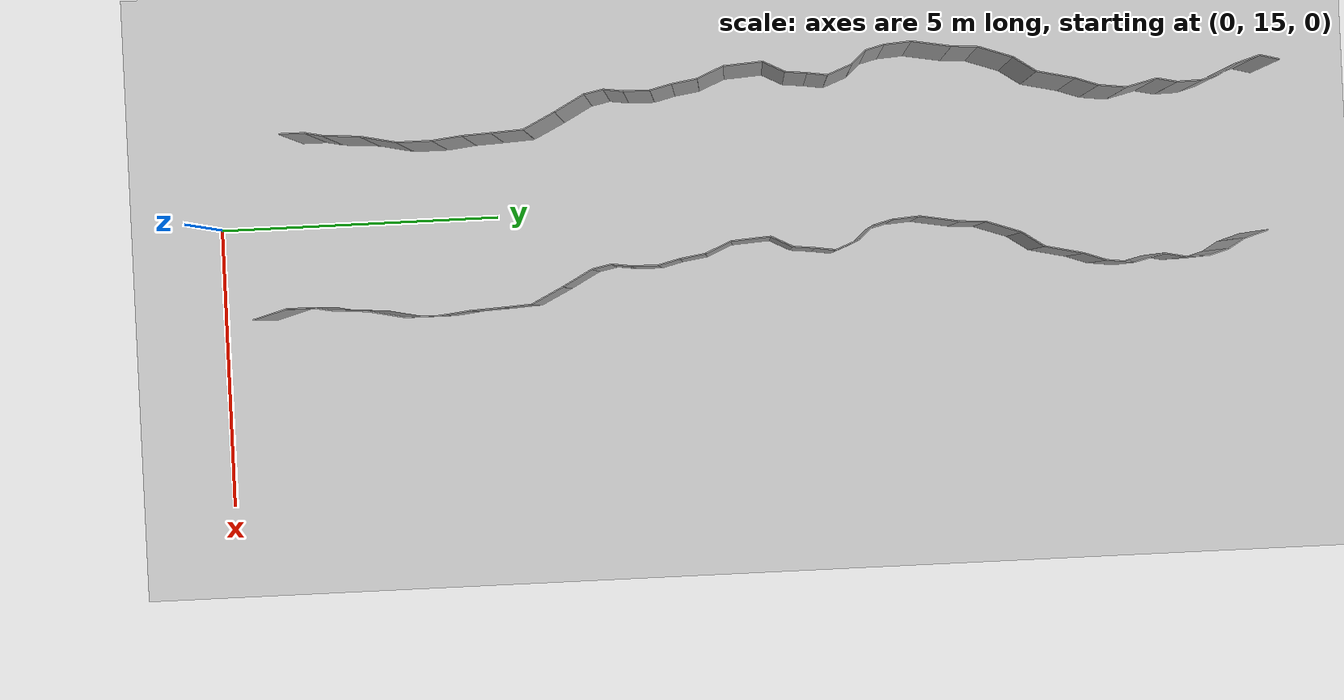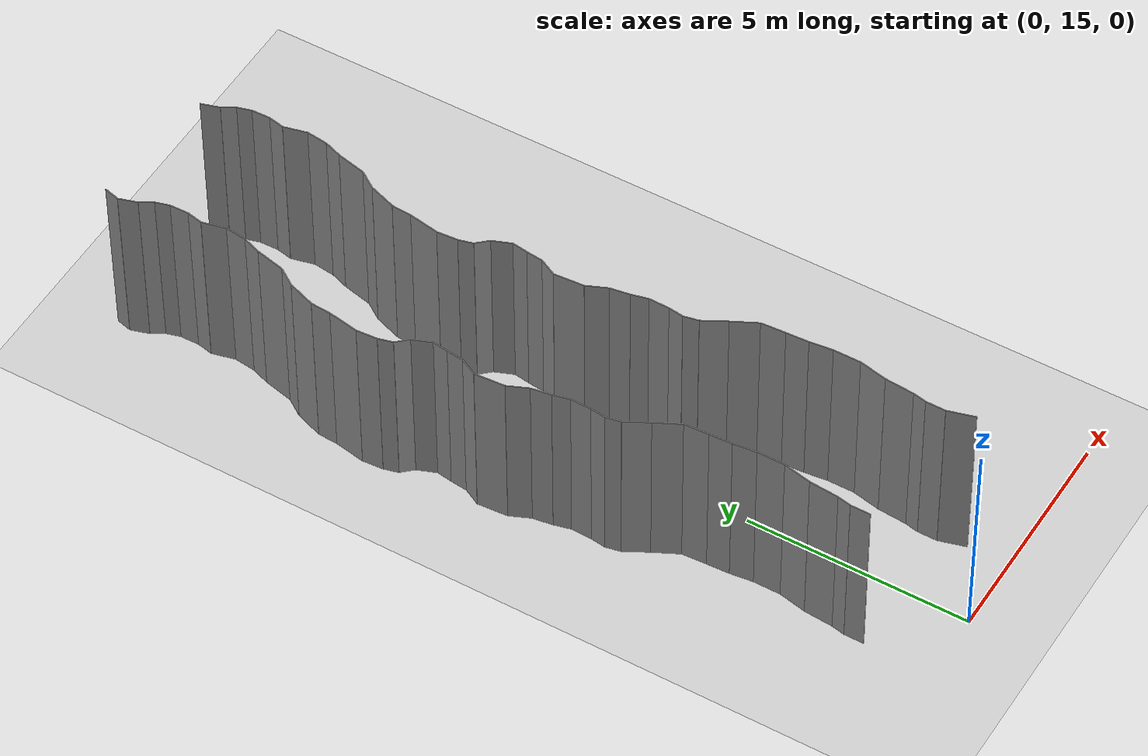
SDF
<sdf version="1.6">
 <world name="default">
  <model name="ground_plane">
   <static>1</static>
   <link name="link">
    <collision name="collision">
     <geometry><plane><normal>0 0 1</normal><size>200 200</size></plane></geometry>
     <surface><friction><ode><mu>100</mu><mu2>50</mu2></ode></friction></surface>
    </collision>
    <visual name="visual">
     <cast_shadows>0</cast_shadows>
     <geometry><plane><normal>0 0 1</normal><size>200 200</size></plane></geometry>
     <material>
      <script><uri>file://media/materials/scripts/gazebo.material</uri><name>Gazebo/Grey</name></script>
     </material>
    </visual>
   </link>
   <pose>0 100 0 0 -0 0</pose>
  </model>
  <model name="wall_73">
   <static>1</static>
   <pose>1.5717013448622166 16.238100182832095 2 0 0 0.2682797676968485</pose>
   <link name="link">
    <collision name="collision"><geometry><box><size>0.02 0.620801550412 4</size></box></geometry></collision>
    <visual name="visual">
     <material>
      <script><name>Gazebo/Grey</name><uri>file://media/materials/scripts/gazebo.material</uri></script>
     </material>
     <geometry><box><size>0.02 0.620801550412 4</size></box></geometry>
    </visual>
   </link>
  </model>
  <model name="wall_74">
   <static>1</static>
   <pose>-1.50974459134682 16.75761538846065 2 0 0 -0.0037824602446166916</pose>
   <link name="link">
    <collision name="collision"><geometry><box><size>0.02 0.440439132026 4</size></box></geometry></collision>
    <visual name="visual">
     <material>
      <script><name>Gazebo/Grey</name><uri>file://media/materials/scripts/gazebo.material</uri></script>
     </material>
     <geometry><box><size>0.02 0.440439132026 4</size></box></geometry>
    </visual>
   </link>
  </model>
  <model name="wall_75">
   <static>1</static>
   <pose>1.49025540865318 16.75761538846065 2 0 0 -0.0037824602446166916</pose>
   <link name="link">
    <collision name="collision"><geometry><box><size>0.02 0.440439132026 4</size></box></geometry></collision>
    <visual name="visual">
     <material>
      <script><name>Gazebo/Grey</name><uri>file://media/materials/scripts/gazebo.material</uri></script>
     </material>
     <geometry><box><size>0.02 0.440439132026 4</size></box></geometry>
    </visual>
   </link>
  </model>
  <model name="wall_76">
   <static>1</static>
   <pose>-1.4788715510664707 17.12615217923091 2 0 0 -0.19983395495206277</pose>
   <link name="link">
    <collision name="collision"><geometry><box><size>0.02 0.302660683265 4</size></box></geometry></collision>
    <visual name="visual">
     <material>
      <script><name>Gazebo/Grey</name><uri>file://media/materials/scripts/gazebo.material</uri></script>
     </material>
     <geometry><box><size>0.02 0.302660683265 4</size></box></geometry>
    </visual>
   </link>
  </model>
  <model name="wall_77">
   <static>1</static>
   <pose>1.5211284489335293 17.12615217923091 2 0 0 -0.19983395495206277</pose>
   <link name="link">
    <collision name="collision"><geometry><box><size>0.02 0.302660683265 4</size></box></geometry></collision>
    <visual name="visual">
     <material>
      <script><name>Gazebo/Grey</name><uri>file://media/materials/scripts/gazebo.material</uri></script>
     </material>
     <geometry><box><size>0.02 0.302660683265 4</size></box></geometry>
    </visual>
   </link>
  </model>
  <model name="wall_78">
   <static>1</static>
   <pose>-1.4244664659801647 17.600824211612792 2 0 0 -0.07452016327790473</pose>
   <link name="link">
    <collision name="collision"><geometry><box><size>0.02 0.654522990148 4</size></box></geometry></collision>
    <visual name="visual">
     <material>
      <script><name>Gazebo/Grey</name><uri>file://media/materials/scripts/gazebo.material</uri></script>
     </material>
     <geometry><box><size>0.02 0.654522990148 4</size></box></geometry>
    </visual>
   </link>
  </model>
  <model name="wall_79">
   <static>1</static>
   <pose>1.5755335340198353 17.600824211612792 2 0 0 -0.07452016327790473</pose>
   <link name="link">
    <collision name="collision"><geometry><box><size>0.02 0.654522990148 4</size></box></geometry></collision>
    <visual name="visual">
     <material>
      <script><name>Gazebo/Grey</name><uri>file://media/materials/scripts/gazebo.material</uri></script>
     </material>
     <geometry><box><size>0.02 0.654522990148 4</size></box></geometry>
    </visual>
   </link>
  </model>
  <model name="wall_80">
   <static>1</static>
   <pose>-1.3352252308877155 18.236211478110285 2 0 0 -0.20692733711803735</pose>
   <link name="link">
    <collision name="collision"><geometry><box><size>0.02 0.631540840454 4</size></box></geometry></collision>
    <visual name="visual">
     <material>
      <script><name>Gazebo/Grey</name><uri>file://media/materials/scripts/gazebo.material</uri></script>
     </material>
     <geometry><box><size>0.02 0.631540840454 4</size></box></geometry>
    </visual>
   </link>
  </model>
  <model name="wall_81">
   <static>1</static>
   <pose>1.6647747691122845 18.236211478110285 2 0 0 -0.20692733711803735</pose>
   <link name="link">
    <collision name="collision"><geometry><box><size>0.02 0.631540840454 4</size></box></geometry></collision>
    <visual name="visual">
     <material>
      <script><name>Gazebo/Grey</name><uri>file://media/materials/scripts/gazebo.material</uri></script>
     </material>
     <geometry><box><size>0.02 0.631540840454 4</size></box></geometry>
    </visual>
   </link>
  </model>
  <model name="wall_82">
   <static>1</static>
   <pose>-1.2701465992344358 18.85010995103074 2 0 0 -0.0006639380611708689</pose>
   <link name="link">
    <collision name="collision"><geometry><box><size>0.02 0.609729011805 4</size></box></geometry></collision>
    <visual name="visual">
     <material>
      <script><name>Gazebo/Grey</name><uri>file://media/materials/scripts/gazebo.material</uri></script>
     </material>
     <geometry><box><size>0.02 0.609729011805 4</size></box></geometry>
    </visual>
   </link>
  </model>
  <model name="wall_83">
   <static>1</static>
   <pose>1.7298534007655642 18.85010995103074 2 0 0 -0.0006639380611708689</pose>
   <link name="link">
    <collision name="collision"><geometry><box><size>0.02 0.609729011805 4</size></box></geometry></collision>
    <visual name="visual">
     <material>
      <script><name>Gazebo/Grey</name><uri>file://media/materials/scripts/gazebo.material</uri></script>
     </material>
     <geometry><box><size>0.02 0.609729011805 4</size></box></geometry>
    </visual>
   </link>
  </model>
  <model name="wall_84">
   <static>1</static>
   <pose>-1.299373359090749 19.41177049488187 2 0 0 0.11410352644146506</pose>
   <link name="link">
    <collision name="collision"><geometry><box><size>0.02 0.516953830518 4</size></box></geometry></collision>
    <visual name="visual">
     <material>
      <script><name>Gazebo/Grey</name><uri>file://media/materials/scripts/gazebo.material</uri></script>
     </material>
     <geometry><box><size>0.02 0.516953830518 4</size></box></geometry>
    </visual>
   </link>
  </model>
  <model name="wall_85">
   <static>1</static>
   <pose>1.700626640909251 19.41177049488187 2 0 0 0.11410352644146506</pose>
   <link name="link">
    <collision name="collision"><geometry><box><size>0.02 0.516953830518 4</size></box></geometry></collision>
    <visual name="visual">
     <material>
      <script><name>Gazebo/Grey</name><uri>file://media/materials/scripts/gazebo.material</uri></script>
     </material>
     <geometry><box><size>0.02 0.516953830518 4</size></box></geometry>
    </visual>
   </link>
  </model>
  <model name="wall_86">
   <static>1</static>
   <pose>-1.3411813555637073 19.92039152996001 2 0 0 0.04911693752746528</pose>
   <link name="link">
    <collision name="collision"><geometry><box><size>0.02 0.504257992132 4</size></box></geometry></collision>
    <visual name="visual">
     <material>
      <script><name>Gazebo/Grey</name><uri>file://media/materials/scripts/gazebo.material</uri></script>
     </material>
     <geometry><box><size>0.02 0.504257992132 4</size></box></geometry>
    </visual>
   </link>
  </model>
  <model name="wall_87">
   <static>1</static>
   <pose>1.6588186444362927 19.92039152996001 2 0 0 0.04911693752746528</pose>
   <link name="link">
    <collision name="collision"><geometry><box><size>0.02 0.504257992132 4</size></box></geometry></collision>
    <visual name="visual">
     <material>
      <script><name>Gazebo/Grey</name><uri>file://media/materials/scripts/gazebo.material</uri></script>
     </material>
     <geometry><box><size>0.02 0.504257992132 4</size></box></geometry>
    </visual>
   </link>
  </model>
  <model name="wall_88">
   <static>1</static>
   <pose>-1.3693698605942195 20.44796934330465 2 0 0 0.05727008561438874</pose>
   <link name="link">
    <collision name="collision"><geometry><box><size>0.02 0.552411436073 4</size></box></geometry></collision>
    <visual name="visual">
     <material>
      <script><name>Gazebo/Grey</name><uri>file://media/materials/scripts/gazebo.material</uri></script>
     </material>
     <geometry><box><size>0.02 0.552411436073 4</size></box></geometry>
    </visual>
   </link>
  </model>
  <model name="wall_89">
   <static>1</static>
   <pose>1.6306301394057805 20.44796934330465 2 0 0 0.05727008561438874</pose>
   <link name="link">
    <collision name="collision"><geometry><box><size>0.02 0.552411436073 4</size></box></geometry></collision>
    <visual name="visual">
     <material>
      <script><name>Gazebo/Grey</name><uri>file://media/materials/scripts/gazebo.material</uri></script>
     </material>
     <geometry><box><size>0.02 0.552411436073 4</size></box></geometry>
    </visual>
   </link>
  </model>
  <model name="wall_90">
   <static>1</static>
   <pose>-1.5231800420298953 20.999573042570326 2 0 0 0.46386536665233824</pose>
   <link name="link">
    <collision name="collision"><geometry><box><size>0.02 0.616888356608 4</size></box></geometry></collision>
    <visual name="visual">
     <material>
      <script><name>Gazebo/Grey</name><uri>file://media/materials/scripts/gazebo.material</uri></script>
     </material>
     <geometry><box><size>0.02 0.616888356608 4</size></box></geometry>
    </visual>
   </link>
  </model>
  <model name="wall_91">
   <static>1</static>
   <pose>1.4768199579701047 20.999573042570326 2 0 0 0.46386536665233824</pose>
   <link name="link">
    <collision name="collision"><geometry><box><size>0.02 0.616888356608 4</size></box></geometry></collision>
    <visual name="visual">
     <material>
      <script><name>Gazebo/Grey</name><uri>file://media/materials/scripts/gazebo.material</uri></script>
     </material>
     <geometry><box><size>0.02 0.616888356608 4</size></box></geometry>
    </visual>
   </link>
  </model>
  <model name="wall_92">
   <static>1</static>
   <pose>-1.8007864723309284 21.532290220596444 2 0 0 0.49783629137514196</pose>
   <link name="link">
    <collision name="collision"><geometry><box><size>0.02 0.584705543885 4</size></box></geometry></collision>
    <visual name="visual">
     <material>
      <script><name>Gazebo/Grey</name><uri>file://media/materials/scripts/gazebo.material</uri></script>
     </material>
     <geometry><box><size>0.02 0.584705543885 4</size></box></geometry>
    </visual>
   </link>
  </model>
  <model name="wall_93">
   <static>1</static>
   <pose>1.1992135276690716 21.532290220596444 2 0 0 0.49783629137514196</pose>
   <link name="link">
    <collision name="collision"><geometry><box><size>0.02 0.584705543885 4</size></box></geometry></collision>
    <visual name="visual">
     <material>
      <script><name>Gazebo/Grey</name><uri>file://media/materials/scripts/gazebo.material</uri></script>
     </material>
     <geometry><box><size>0.02 0.584705543885 4</size></box></geometry>
    </visual>
   </link>
  </model>
  <model name="wall_94">
   <static>1</static>
   <pose>-1.9741265558823107 21.956182674335075 2 0 0 0.19928846943864703</pose>
   <link name="link">
    <collision name="collision"><geometry><box><size>0.02 0.340797350269 4</size></box></geometry></collision>
    <visual name="visual">
     <material>
      <script><name>Gazebo/Grey</name><uri>file://media/materials/scripts/gazebo.material</uri></script>
     </material>
     <geometry><box><size>0.02 0.340797350269 4</size></box></geometry>
    </visual>
   </link>
  </model>
  <model name="wall_95">
   <static>1</static>
   <pose>1.0258734441176893 21.956182674335075 2 0 0 0.19928846943864703</pose>
   <link name="link">
    <collision name="collision"><geometry><box><size>0.02 0.340797350269 4</size></box></geometry></collision>
    <visual name="visual">
     <material>
      <script><name>Gazebo/Grey</name><uri>file://media/materials/scripts/gazebo.material</uri></script>
     </material>
     <geometry><box><size>0.02 0.340797350269 4</size></box></geometry>
    </visual>
   </link>
  </model>
  <model name="wall_96">
   <static>1</static>
   <pose>-1.9852331832228716 22.29065924674199 2 0 0 -0.13431607236533805</pose>
   <link name="link">
    <collision name="collision"><geometry><box><size>0.02 0.337944779792 4</size></box></geometry></collision>
    <visual name="visual">
     <material>
      <script><name>Gazebo/Grey</name><uri>file://media/materials/scripts/gazebo.material</uri></script>
     </material>
     <geometry><box><size>0.02 0.337944779792 4</size></box></geometry>
    </visual>
   </link>
  </model>
  <model name="wall_97">
   <static>1</static>
   <pose>1.0147668167771284 22.29065924674199 2 0 0 -0.13431607236533805</pose>
   <link name="link">
    <collision name="collision"><geometry><box><size>0.02 0.337944779792 4</size></box></geometry></collision>
    <visual name="visual">
     <material>
      <script><name>Gazebo/Grey</name><uri>file://media/materials/scripts/gazebo.material</uri></script>
     </material>
     <geometry><box><size>0.02 0.337944779792 4</size></box></geometry>
    </visual>
   </link>
  </model>
  <model name="wall_98">
   <static>1</static>
   <pose>-1.957455391450274 22.690313694674614 2 0 0 -0.022176277751504197</pose>
   <link name="link">
    <collision name="collision"><geometry><box><size>0.02 0.464522152554 4</size></box></geometry></collision>
    <visual name="visual">
     <material>
      <script><name>Gazebo/Grey</name><uri>file://media/materials/scripts/gazebo.material</uri></script>
     </material>
     <geometry><box><size>0.02 0.464522152554 4</size></box></geometry>
    </visual>
   </link>
  </model>
  <model name="wall_99">
   <static>1</static>
   <pose>1.042544608549726 22.690313694674614 2 0 0 -0.022176277751504197</pose>
   <link name="link">
    <collision name="collision"><geometry><box><size>0.02 0.464522152554 4</size></box></geometry></collision>
    <visual name="visual">
     <material>
      <script><name>Gazebo/Grey</name><uri>file://media/materials/scripts/gazebo.material</uri></script>
     </material>
     <geometry><box><size>0.02 0.464522152554 4</size></box></geometry>
    </visual>
   </link>
  </model>
  <model name="wall_100">
   <static>1</static>
   <pose>-1.9981191306679005 23.109032375694895 2 0 0 0.24086350407893845</pose>
   <link name="link">
    <collision name="collision"><geometry><box><size>0.02 0.384118009989 4</size></box></geometry></collision>
    <visual name="visual">
     <material>
      <script><name>Gazebo/Grey</name><uri>file://media/materials/scripts/gazebo.material</uri></script>
     </material>
     <geometry><box><size>0.02 0.384118009989 4</size></box></geometry>
    </visual>
   </link>
  </model>
  <model name="wall_101">
   <static>1</static>
   <pose>1.0018808693320995 23.109032375694895 2 0 0 0.24086350407893845</pose>
   <link name="link">
    <collision name="collision"><geometry><box><size>0.02 0.384118009989 4</size></box></geometry></collision>
    <visual name="visual">
     <material>
      <script><name>Gazebo/Grey</name><uri>file://media/materials/scripts/gazebo.material</uri></script>
     </material>
     <geometry><box><size>0.02 0.384118009989 4</size></box></geometry>
    </visual>
   </link>
  </model>
  <model name="wall_102">
   <static>1</static>
   <pose>-2.0779140029207506 23.517107589674563 2 0 0 0.15218474667878146</pose>
   <link name="link">
    <collision name="collision"><geometry><box><size>0.02 0.448302374056 4</size></box></geometry></collision>
    <visual name="visual">
     <material>
      <script><name>Gazebo/Grey</name><uri>file://media/materials/scripts/gazebo.material</uri></script>
     </material>
     <geometry><box><size>0.02 0.448302374056 4</size></box></geometry>
    </visual>
   </link>
  </model>
  <model name="wall_103">
   <static>1</static>
   <pose>0.9220859970792494 23.517107589674563 2 0 0 0.15218474667878146</pose>
   <link name="link">
    <collision name="collision"><geometry><box><size>0.02 0.448302374056 4</size></box></geometry></collision>
    <visual name="visual">
     <material>
      <script><name>Gazebo/Grey</name><uri>file://media/materials/scripts/gazebo.material</uri></script>
     </material>
     <geometry><box><size>0.02 0.448302374056 4</size></box></geometry>
    </visual>
   </link>
  </model>
  <model name="wall_104">
   <static>1</static>
   <pose>-2.2093518582087603 23.965898470175 2 0 0 0.4051614446278775</pose>
   <link name="link">
    <collision name="collision"><geometry><box><size>0.02 0.494495743005 4</size></box></geometry></collision>
    <visual name="visual">
     <material>
      <script><name>Gazebo/Grey</name><uri>file://media/materials/scripts/gazebo.material</uri></script>
     </material>
     <geometry><box><size>0.02 0.494495743005 4</size></box></geometry>
    </visual>
   </link>
  </model>
  <model name="wall_105">
   <static>1</static>
   <pose>0.7906481417912397 23.965898470175 2 0 0 0.4051614446278775</pose>
   <link name="link">
    <collision name="collision"><geometry><box><size>0.02 0.494495743005 4</size></box></geometry></collision>
    <visual name="visual">
     <material>
      <script><name>Gazebo/Grey</name><uri>file://media/materials/scripts/gazebo.material</uri></script>
     </material>
     <geometry><box><size>0.02 0.494495743005 4</size></box></geometry>
    </visual>
   </link>
  </model>
  <model name="wall_106">
   <static>1</static>
   <pose>-2.3298995162277705 24.53259080262013 2 0 0 0.06791676471023138</pose>
   <link name="link">
    <collision name="collision"><geometry><box><size>0.02 0.680492750816 4</size></box></geometry></collision>
    <visual name="visual">
     <material>
      <script><name>Gazebo/Grey</name><uri>file://media/materials/scripts/gazebo.material</uri></script>
     </material>
     <geometry><box><size>0.02 0.680492750816 4</size></box></geometry>
    </visual>
   </link>
  </model>
  <model name="wall_107">
   <static>1</static>
   <pose>0.6701004837722295 24.53259080262013 2 0 0 0.06791676471023138</pose>
   <link name="link">
    <collision name="collision"><geometry><box><size>0.02 0.680492750816 4</size></box></geometry></collision>
    <visual name="visual">
     <material>
      <script><name>Gazebo/Grey</name><uri>file://media/materials/scripts/gazebo.material</uri></script>
     </material>
     <geometry><box><size>0.02 0.680492750816 4</size></box></geometry>
    </visual>
   </link>
  </model>
  <model name="wall_108">
   <static>1</static>
   <pose>-2.2571940620833413 25.058265987990737 2 0 0 -0.4751352688544091</pose>
   <link name="link">
    <collision name="collision"><geometry><box><size>0.02 0.418818653009 4</size></box></geometry></collision>
    <visual name="visual">
     <material>
      <script><name>Gazebo/Grey</name><uri>file://media/materials/scripts/gazebo.material</uri></script>
     </material>
     <geometry><box><size>0.02 0.418818653009 4</size></box></geometry>
    </visual>
   </link>
  </model>
  <model name="wall_109">
   <static>1</static>
   <pose>0.7428059379166587 25.058265987990737 2 0 0 -0.4751352688544091</pose>
   <link name="link">
    <collision name="collision"><geometry><box><size>0.02 0.418818653009 4</size></box></geometry></collision>
    <visual name="visual">
     <material>
      <script><name>Gazebo/Grey</name><uri>file://media/materials/scripts/gazebo.material</uri></script>
     </material>
     <geometry><box><size>0.02 0.418818653009 4</size></box></geometry>
    </visual>
   </link>
  </model>
  <model name="wall_110">
   <static>1</static>
   <pose>-2.1412712356360597 25.433382794964054 2 0 0 -0.10614440251509129</pose>
   <link name="link">
    <collision name="collision"><geometry><box><size>0.02 0.379945491842 4</size></box></geometry></collision>
    <visual name="visual">
     <material>
      <script><name>Gazebo/Grey</name><uri>file://media/materials/scripts/gazebo.material</uri></script>
     </material>
     <geometry><box><size>0.02 0.379945491842 4</size></box></geometry>
    </visual>
   </link>
  </model>
  <model name="wall_111">
   <static>1</static>
   <pose>0.8587287643639403 25.433382794964054 2 0 0 -0.10614440251509129</pose>
   <link name="link">
    <collision name="collision"><geometry><box><size>0.02 0.379945491842 4</size></box></geometry></collision>
    <visual name="visual">
     <material>
      <script><name>Gazebo/Grey</name><uri>file://media/materials/scripts/gazebo.material</uri></script>
     </material>
     <geometry><box><size>0.02 0.379945491842 4</size></box></geometry>
    </visual>
   </link>
  </model>
  <model name="wall_112">
   <static>1</static>
   <pose>-2.0954033985259763 25.797578480225994 2 0 0 -0.14580500051363662</pose>
   <link name="link">
    <collision name="collision"><geometry><box><size>0.02 0.354344073036 4</size></box></geometry></collision>
    <visual name="visual">
     <material>
      <script><name>Gazebo/Grey</name><uri>file://media/materials/scripts/gazebo.material</uri></script>
     </material>
     <geometry><box><size>0.02 0.354344073036 4</size></box></geometry>
    </visual>
   </link>
  </model>
  <model name="wall_113">
   <static>1</static>
   <pose>0.9045966014740237 25.797578480225994 2 0 0 -0.14580500051363662</pose>
   <link name="link">
    <collision name="collision"><geometry><box><size>0.02 0.354344073036 4</size></box></geometry></collision>
    <visual name="visual">
     <material>
      <script><name>Gazebo/Grey</name><uri>file://media/materials/scripts/gazebo.material</uri></script>
     </material>
     <geometry><box><size>0.02 0.354344073036 4</size></box></geometry>
    </visual>
   </link>
  </model>
  <model name="wall_114">
   <static>1</static>
   <pose>-2.15126952615618 26.183673261530842 2 0 0 0.3693593631551004</pose>
   <link name="link">
    <collision name="collision"><geometry><box><size>0.02 0.452095171856 4</size></box></geometry></collision>
    <visual name="visual">
     <material>
      <script><name>Gazebo/Grey</name><uri>file://media/materials/scripts/gazebo.material</uri></script>
     </material>
     <geometry><box><size>0.02 0.452095171856 4</size></box></geometry>
    </visual>
   </link>
  </model>
  <model name="wall_115">
   <static>1</static>
   <pose>0.8487304738438199 26.183673261530842 2 0 0 0.3693593631551004</pose>
   <link name="link">
    <collision name="collision"><geometry><box><size>0.02 0.452095171856 4</size></box></geometry></collision>
    <visual name="visual">
     <material>
      <script><name>Gazebo/Grey</name><uri>file://media/materials/scripts/gazebo.material</uri></script>
     </material>
     <geometry><box><size>0.02 0.452095171856 4</size></box></geometry>
    </visual>
   </link>
  </model>
  <model name="wall_116">
   <static>1</static>
   <pose>-2.347660921753066 26.519426930049164 2 0 0 0.7430148088183338</pose>
   <link name="link">
    <collision name="collision"><geometry><box><size>0.02 0.339341414706 4</size></box></geometry></collision>
    <visual name="visual">
     <material>
      <script><name>Gazebo/Grey</name><uri>file://media/materials/scripts/gazebo.material</uri></script>
     </material>
     <geometry><box><size>0.02 0.339341414706 4</size></box></geometry>
    </visual>
   </link>
  </model>
  <model name="wall_117">
   <static>1</static>
   <pose>0.6523390782469338 26.519426930049164 2 0 0 0.7430148088183338</pose>
   <link name="link">
    <collision name="collision"><geometry><box><size>0.02 0.339341414706 4</size></box></geometry></collision>
    <visual name="visual">
     <material>
      <script><name>Gazebo/Grey</name><uri>file://media/materials/scripts/gazebo.material</uri></script>
     </material>
     <geometry><box><size>0.02 0.339341414706 4</size></box></geometry>
    </visual>
   </link>
  </model>
  <model name="wall_118">
   <static>1</static>
   <pose>-2.5033234400872235 26.80558627225861 2 0 0 0.24834041944707833</pose>
   <link name="link">
    <collision name="collision"><geometry><box><size>0.02 0.332620940302 4</size></box></geometry></collision>
    <visual name="visual">
     <material>
      <script><name>Gazebo/Grey</name><uri>file://media/materials/scripts/gazebo.material</uri></script>
     </material>
     <geometry><box><size>0.02 0.332620940302 4</size></box></geometry>
    </visual>
   </link>
  </model>
  <model name="wall_119">
   <static>1</static>
   <pose>0.4966765599127765 26.80558627225861 2 0 0 0.24834041944707833</pose>
   <link name="link">
    <collision name="collision"><geometry><box><size>0.02 0.332620940302 4</size></box></geometry></collision>
    <visual name="visual">
     <material>
      <script><name>Gazebo/Grey</name><uri>file://media/materials/scripts/gazebo.material</uri></script>
     </material>
     <geometry><box><size>0.02 0.332620940302 4</size></box></geometry>
    </visual>
   </link>
  </model>
  <model name="wall_120">
   <static>1</static>
   <pose>-2.5610477131316465 27.200331072512704 2 0 0 0.07200913788596815</pose>
   <link name="link">
    <collision name="collision"><geometry><box><size>0.02 0.468286496017 4</size></box></geometry></collision>
    <visual name="visual">
     <material>
      <script><name>Gazebo/Grey</name><uri>file://media/materials/scripts/gazebo.material</uri></script>
     </material>
     <geometry><box><size>0.02 0.468286496017 4</size></box></geometry>
    </visual>
   </link>
  </model>
  <model name="wall_121">
   <static>1</static>
   <pose>0.4389522868683535 27.200331072512704 2 0 0 0.07200913788596815</pose>
   <link name="link">
    <collision name="collision"><geometry><box><size>0.02 0.468286496017 4</size></box></geometry></collision>
    <visual name="visual">
     <material>
      <script><name>Gazebo/Grey</name><uri>file://media/materials/scripts/gazebo.material</uri></script>
     </material>
     <geometry><box><size>0.02 0.468286496017 4</size></box></geometry>
    </visual>
   </link>
  </model>
  <model name="wall_122">
   <static>1</static>
   <pose>-2.5186295732245196 27.77410115619002 2 0 0 -0.17245600637142564</pose>
   <link name="link">
    <collision name="collision"><geometry><box><size>0.02 0.690713096888 4</size></box></geometry></collision>
    <visual name="visual">
     <material>
      <script><name>Gazebo/Grey</name><uri>file://media/materials/scripts/gazebo.material</uri></script>
     </material>
     <geometry><box><size>0.02 0.690713096888 4</size></box></geometry>
    </visual>
   </link>
  </model>
  <model name="wall_123">
   <static>1</static>
   <pose>0.48137042677548036 27.77410115619002 2 0 0 -0.17245600637142564</pose>
   <link name="link">
    <collision name="collision"><geometry><box><size>0.02 0.690713096888 4</size></box></geometry></collision>
    <visual name="visual">
     <material>
      <script><name>Gazebo/Grey</name><uri>file://media/materials/scripts/gazebo.material</uri></script>
     </material>
     <geometry><box><size>0.02 0.690713096888 4</size></box></geometry>
    </visual>
   </link>
  </model>
  <model name="wall_124">
   <static>1</static>
   <pose>-2.4458604175021397 28.33828294426696 2 0 0 -0.06023177017842287</pose>
   <link name="link">
    <collision name="collision"><geometry><box><size>0.02 0.448710006517 4</size></box></geometry></collision>
    <visual name="visual">
     <material>
      <script><name>Gazebo/Grey</name><uri>file://media/materials/scripts/gazebo.material</uri></script>
     </material>
     <geometry><box><size>0.02 0.448710006517 4</size></box></geometry>
    </visual>
   </link>
  </model>
  <model name="wall_125">
   <static>1</static>
   <pose>0.5541395824978603 28.33828294426696 2 0 0 -0.06023177017842287</pose>
   <link name="link">
    <collision name="collision"><geometry><box><size>0.02 0.448710006517 4</size></box></geometry></collision>
    <visual name="visual">
     <material>
      <script><name>Gazebo/Grey</name><uri>file://media/materials/scripts/gazebo.material</uri></script>
     </material>
     <geometry><box><size>0.02 0.448710006517 4</size></box></geometry>
    </visual>
   </link>
  </model>
  <model name="wall_126">
   <static>1</static>
   <pose>-2.3284115643125376 28.861993465372215 2 0 0 -0.33377991831879267</pose>
   <link name="link">
    <collision name="collision"><geometry><box><size>0.02 0.634544781683 4</size></box></geometry></collision>
    <visual name="visual">
     <material>
      <script><name>Gazebo/Grey</name><uri>file://media/materials/scripts/gazebo.material</uri></script>
     </material>
     <geometry><box><size>0.02 0.634544781683 4</size></box></geometry>
    </visual>
   </link>
  </model>
  <model name="wall_127">
   <static>1</static>
   <pose>0.6715884356874624 28.861993465372215 2 0 0 -0.33377991831879267</pose>
   <link name="link">
    <collision name="collision"><geometry><box><size>0.02 0.634544781683 4</size></box></geometry></collision>
    <visual name="visual">
     <material>
      <script><name>Gazebo/Grey</name><uri>file://media/materials/scripts/gazebo.material</uri></script>
     </material>
     <geometry><box><size>0.02 0.634544781683 4</size></box></geometry>
    </visual>
   </link>
  </model>
  <model name="wall_128">
   <static>1</static>
   <pose>-2.0929666959523736 29.355148747225623 2 0 0 -0.5971552938586568</pose>
   <link name="link">
    <collision name="collision"><geometry><box><size>0.02 0.467732288462 4</size></box></geometry></collision>
    <visual name="visual">
     <material>
      <script><name>Gazebo/Grey</name><uri>file://media/materials/scripts/gazebo.material</uri></script>
     </material>
     <geometry><box><size>0.02 0.467732288462 4</size></box></geometry>
    </visual>
   </link>
  </model>
  <model name="wall_129">
   <static>1</static>
   <pose>0.9070333040476264 29.355148747225623 2 0 0 -0.5971552938586568</pose>
   <link name="link">
    <collision name="collision"><geometry><box><size>0.02 0.467732288462 4</size></box></geometry></collision>
    <visual name="visual">
     <material>
      <script><name>Gazebo/Grey</name><uri>file://media/materials/scripts/gazebo.material</uri></script>
     </material>
     <geometry><box><size>0.02 0.467732288462 4</size></box></geometry>
    </visual>
   </link>
  </model>
  <model name="wall_130">
   <static>1</static>
   <pose>-1.887625406823854 29.87661531333297 2 0 0 -0.22138283560263158</pose>
   <link name="link">
    <collision name="collision"><geometry><box><size>0.02 0.672561321554 4</size></box></geometry></collision>
    <visual name="visual">
     <material>
      <script><name>Gazebo/Grey</name><uri>file://media/materials/scripts/gazebo.material</uri></script>
     </material>
     <geometry><box><size>0.02 0.672561321554 4</size></box></geometry>
    </visual>
   </link>
  </model>
  <model name="wall_131">
   <static>1</static>
   <pose>1.112374593176146 29.87661531333297 2 0 0 -0.22138283560263158</pose>
   <link name="link">
    <collision name="collision"><geometry><box><size>0.02 0.672561321554 4</size></box></geometry></collision>
    <visual name="visual">
     <material>
      <script><name>Gazebo/Grey</name><uri>file://media/materials/scripts/gazebo.material</uri></script>
     </material>
     <geometry><box><size>0.02 0.672561321554 4</size></box></geometry>
    </visual>
   </link>
  </model>
  <model name="wall_132">
   <static>1</static>
   <pose>-1.7448991974694894 30.40071087103362 2 0 0 -0.3379394931168675</pose>
   <link name="link">
    <collision name="collision"><geometry><box><size>0.02 0.41554725654 4</size></box></geometry></collision>
    <visual name="visual">
     <material>
      <script><name>Gazebo/Grey</name><uri>file://media/materials/scripts/gazebo.material</uri></script>
     </material>
     <geometry><box><size>0.02 0.41554725654 4</size></box></geometry>
    </visual>
   </link>
  </model>
  <model name="wall_133">
   <static>1</static>
   <pose>1.2551008025305106 30.40071087103362 2 0 0 -0.3379394931168675</pose>
   <link name="link">
    <collision name="collision"><geometry><box><size>0.02 0.41554725654 4</size></box></geometry></collision>
    <visual name="visual">
     <material>
      <script><name>Gazebo/Grey</name><uri>file://media/materials/scripts/gazebo.material</uri></script>
     </material>
     <geometry><box><size>0.02 0.41554725654 4</size></box></geometry>
    </visual>
   </link>
  </model>
  <model name="wall_134">
   <static>1</static>
   <pose>-1.6463858202921573 30.83747866851004 2 0 0 -0.12244898429132471</pose>
   <link name="link">
    <collision name="collision"><geometry><box><size>0.02 0.485124141611 4</size></box></geometry></collision>
    <visual name="visual">
     <material>
      <script><name>Gazebo/Grey</name><uri>file://media/materials/scripts/gazebo.material</uri></script>
     </material>
     <geometry><box><size>0.02 0.485124141611 4</size></box></geometry>
    </visual>
   </link>
  </model>
  <model name="wall_135">
   <static>1</static>
   <pose>1.3536141797078427 30.83747866851004 2 0 0 -0.12244898429132471</pose>
   <link name="link">
    <collision name="collision"><geometry><box><size>0.02 0.485124141611 4</size></box></geometry></collision>
    <visual name="visual">
     <material>
      <script><name>Gazebo/Grey</name><uri>file://media/materials/scripts/gazebo.material</uri></script>
     </material>
     <geometry><box><size>0.02 0.485124141611 4</size></box></geometry>
    </visual>
   </link>
  </model>
  <model name="wall_136">
   <static>1</static>
   <pose>-1.6794150823057896 31.3387916316887 2 0 0 0.2359821105014425</pose>
   <link name="link">
    <collision name="collision"><geometry><box><size>0.02 0.535988989141 4</size></box></geometry></collision>
    <visual name="visual">
     <material>
      <script><name>Gazebo/Grey</name><uri>file://media/materials/scripts/gazebo.material</uri></script>
     </material>
     <geometry><box><size>0.02 0.535988989141 4</size></box></geometry>
    </visual>
   </link>
  </model>
  <model name="wall_137">
   <static>1</static>
   <pose>1.3205849176942104 31.3387916316887 2 0 0 0.2359821105014425</pose>
   <link name="link">
    <collision name="collision"><geometry><box><size>0.02 0.535988989141 4</size></box></geometry></collision>
    <visual name="visual">
     <material>
      <script><name>Gazebo/Grey</name><uri>file://media/materials/scripts/gazebo.material</uri></script>
     </material>
     <geometry><box><size>0.02 0.535988989141 4</size></box></geometry>
    </visual>
   </link>
  </model>
  <model name="wall_138">
   <static>1</static>
   <pose>-1.7048402734673467 31.775662038976645 2 0 0 -0.20812016391362742</pose>
   <link name="link">
    <collision name="collision"><geometry><box><size>0.02 0.360383347618 4</size></box></geometry></collision>
    <visual name="visual">
     <material>
      <script><name>Gazebo/Grey</name><uri>file://media/materials/scripts/gazebo.material</uri></script>
     </material>
     <geometry><box><size>0.02 0.360383347618 4</size></box></geometry>
    </visual>
   </link>
  </model>
  <model name="wall_139">
   <static>1</static>
   <pose>1.2951597265326533 31.775662038976645 2 0 0 -0.20812016391362742</pose>
   <link name="link">
    <collision name="collision"><geometry><box><size>0.02 0.360383347618 4</size></box></geometry></collision>
    <visual name="visual">
     <material>
      <script><name>Gazebo/Grey</name><uri>file://media/materials/scripts/gazebo.material</uri></script>
     </material>
     <geometry><box><size>0.02 0.360383347618 4</size></box></geometry>
    </visual>
   </link>
  </model>
  <model name="wall_140">
   <static>1</static>
   <pose>-1.6722326557583902 32.16338706056617 2 0 0 0.021866385373785227</pose>
   <link name="link">
    <collision name="collision"><geometry><box><size>0.02 0.422944496388 4</size></box></geometry></collision>
    <visual name="visual">
     <material>
      <script><name>Gazebo/Grey</name><uri>file://media/materials/scripts/gazebo.material</uri></script>
     </material>
     <geometry><box><size>0.02 0.422944496388 4</size></box></geometry>
    </visual>
   </link>
  </model>
  <model name="wall_141">
   <static>1</static>
   <pose>1.3277673442416098 32.16338706056617 2 0 0 0.021866385373785227</pose>
   <link name="link">
    <collision name="collision"><geometry><box><size>0.02 0.422944496388 4</size></box></geometry></collision>
    <visual name="visual">
     <material>
      <script><name>Gazebo/Grey</name><uri>file://media/materials/scripts/gazebo.material</uri></script>
     </material>
     <geometry><box><size>0.02 0.422944496388 4</size></box></geometry>
    </visual>
   </link>
  </model>
  <model name="wall_142">
   <static>1</static>
   <pose>-1.721258932426505 32.532417068608204 2 0 0 0.27460939465044737</pose>
   <link name="link">
    <collision name="collision"><geometry><box><size>0.02 0.327487183181 4</size></box></geometry></collision>
    <visual name="visual">
     <material>
      <script><name>Gazebo/Grey</name><uri>file://media/materials/scripts/gazebo.material</uri></script>
     </material>
     <geometry><box><size>0.02 0.327487183181 4</size></box></geometry>
    </visual>
   </link>
  </model>
  <model name="wall_143">
   <static>1</static>
   <pose>1.278741067573495 32.532417068608204 2 0 0 0.27460939465044737</pose>
   <link name="link">
    <collision name="collision"><geometry><box><size>0.02 0.327487183181 4</size></box></geometry></collision>
    <visual name="visual">
     <material>
      <script><name>Gazebo/Grey</name><uri>file://media/materials/scripts/gazebo.material</uri></script>
     </material>
     <geometry><box><size>0.02 0.327487183181 4</size></box></geometry>
    </visual>
   </link>
  </model>
  <model name="wall_144">
   <static>1</static>
   <pose>-1.849252781018231 32.83060989933142 2 0 0 0.5364383143802753</pose>
   <link name="link">
    <collision name="collision"><geometry><box><size>0.02 0.327117825109 4</size></box></geometry></collision>
    <visual name="visual">
     <material>
      <script><name>Gazebo/Grey</name><uri>file://media/materials/scripts/gazebo.material</uri></script>
     </material>
     <geometry><box><size>0.02 0.327117825109 4</size></box></geometry>
    </visual>
   </link>
  </model>
  <model name="wall_145">
   <static>1</static>
   <pose>1.150747218981769 32.83060989933142 2 0 0 0.5364383143802753</pose>
   <link name="link">
    <collision name="collision"><geometry><box><size>0.02 0.327117825109 4</size></box></geometry></collision>
    <visual name="visual">
     <material>
      <script><name>Gazebo/Grey</name><uri>file://media/materials/scripts/gazebo.material</uri></script>
     </material>
     <geometry><box><size>0.02 0.327117825109 4</size></box></geometry>
    </visual>
   </link>
  </model>
  <model name="wall_146">
   <static>1</static>
   <pose>-1.9946902331714973 33.17599067893504 2 0 0 0.29328010065707266</pose>
   <link name="link">
    <collision name="collision"><geometry><box><size>0.02 0.427861900106 4</size></box></geometry></collision>
    <visual name="visual">
     <material>
      <script><name>Gazebo/Grey</name><uri>file://media/materials/scripts/gazebo.material</uri></script>
     </material>
     <geometry><box><size>0.02 0.427861900106 4</size></box></geometry>
    </visual>
   </link>
  </model>
  <model name="wall_147">
   <static>1</static>
   <pose>1.0053097668285027 33.17599067893504 2 0 0 0.29328010065707266</pose>
   <link name="link">
    <collision name="collision"><geometry><box><size>0.02 0.427861900106 4</size></box></geometry></collision>
    <visual name="visual">
     <material>
      <script><name>Gazebo/Grey</name><uri>file://media/materials/scripts/gazebo.material</uri></script>
     </material>
     <geometry><box><size>0.02 0.427861900106 4</size></box></geometry>
    </visual>
   </link>
  </model>
  <model name="wall_148">
   <static>1</static>
   <pose>-2.011857207300096 33.55073530533225 2 0 0 -0.2570809462388972</pose>
   <link name="link">
    <collision name="collision"><geometry><box><size>0.02 0.351446563598 4</size></box></geometry></collision>
    <visual name="visual">
     <material>
      <script><name>Gazebo/Grey</name><uri>file://media/materials/scripts/gazebo.material</uri></script>
     </material>
     <geometry><box><size>0.02 0.351446563598 4</size></box></geometry>
    </visual>
   </link>
  </model>
 </world>
</sdf>
